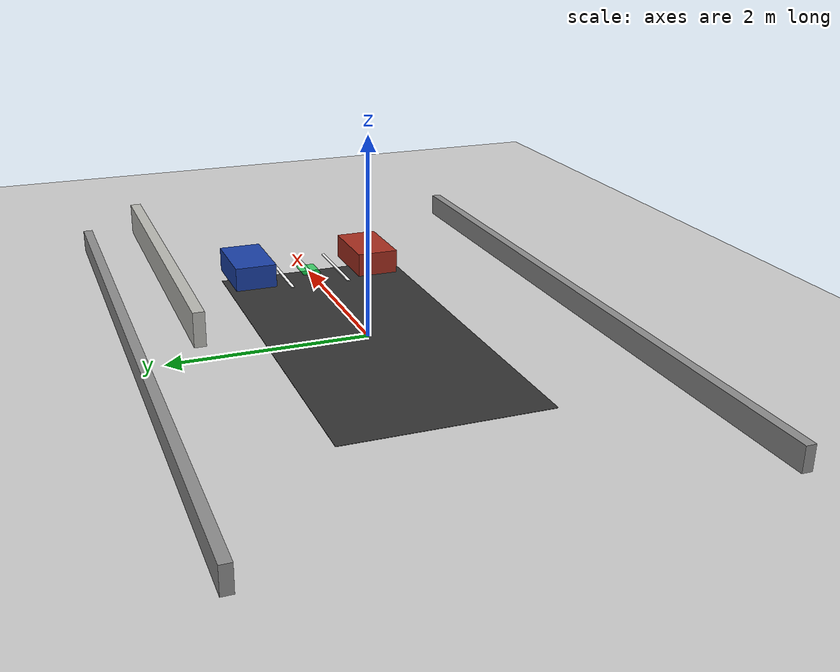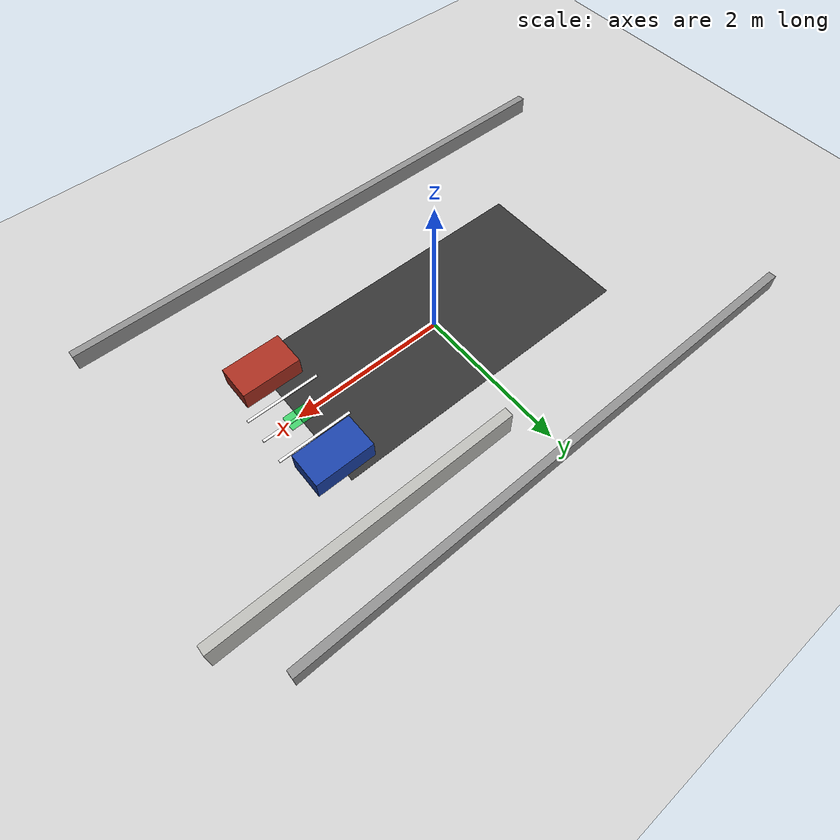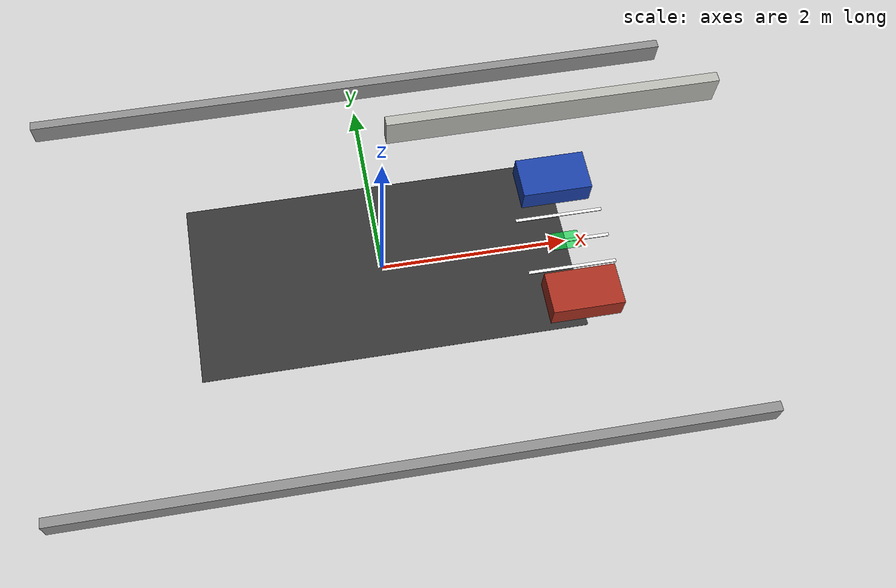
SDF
<?xml version="1.0"?>
<sdf version="1.6">
  <!-- 定义一个名为 tianbot_mini_parking_lot 的 Gazebo 世界。 -->
  <world name="tianbot_mini_parking_lot">
    <!-- 默认太阳光模型，用来给场景提供光照。 -->
    <include>
      <uri>model://sun</uri>
    </include>

    <!-- 默认无限大地面，给小车轮子提供真实接触地面。下面的深色地面只是视觉效果。 -->
    <include>
      <uri>model://ground_plane</uri>
    </include>

    <physics name="ode_physics" type="ode">
      <max_step_size>0.001</max_step_size>
      <real_time_factor>1.0</real_time_factor>
      <real_time_update_rate>1000</real_time_update_rate>
    </physics>

    <!-- 场景视觉设置：环境光、天空背景色和阴影。 -->
    <scene>
      <ambient>0.55 0.55 0.55 1</ambient>
      <background>0.75 0.82 0.90 1</background>
      <shadows>true</shadows>
    </scene>

    <!--
      深色停车场地面贴片。
      这里仅设置 visual 外观，不设置 collision。
      因为前面的 ground_plane 已经提供了真实地面碰撞。
    -->
    <model name="parking_floor">
      <static>true</static>
      <!-- 位于世界坐标原点，略微高于地面，避免和 ground_plane 视觉闪烁。 -->
      <pose>0 0 0.002 0 0 0</pose>
      <link name="link">
        <visual name="visual">
          <geometry>
            <box>
              <!-- 地面可视尺寸：长 4.0 米，宽 4.0 米，厚 0.004 米。 -->
              <size>4.0 2.0 0.004</size>
            </box>
          </geometry>
          <material>
            <ambient>0.18 0.18 0.18 1</ambient>
            <diffuse>0.20 0.20 0.20 1</diffuse>
          </material>
        </visual>
      </link>
    </model>

    <!--
      停车位后方墙体。
      这个物体同时有 collision 和 visual，所以既能看到，也会成为真实障碍物。
    -->
    <model name="back_wall">
      <static>true</static>
      <!-- x=2.2，y=1.6，z=0.18。增大 y 可以把后墙往更远处移动。 -->
      <pose>2.2 1.6 0.18 0 0 0</pose>
      <link name="link">
        <collision name="collision">
          <!-- 墙体尺寸：长 3.8 米，厚 0.12 米，高 0.36 米。 -->
          <geometry><box><size>3.8 0.12 0.36</size></box></geometry>
        </collision>
        <visual name="visual">
          <geometry><box><size>3.8 0.12 0.36</size></box></geometry>
          <material><ambient>0.72 0.72 0.70 1</ambient><diffuse>0.72 0.72 0.70 1</diffuse></material>
        </visual>
      </link>
    </model>

    <!-- 停车通道左侧长边界墙。 -->
    <model name="left_boundary">
      <static>true</static>
      <!-- 位于 y 正方向一侧。增大 y 可以加宽通道。 -->
      <pose>0.0 2.25 0.12 0 0 0</pose>
      <link name="link">
        <collision name="collision">
          <!-- 边界墙尺寸：长 7.2 米，厚 0.10 米，高 0.24 米。 -->
          <geometry><box><size>7.2 0.10 0.24</size></box></geometry>
        </collision>
        <visual name="visual">
          <geometry><box><size>7.2 0.10 0.24</size></box></geometry>
          <material><ambient>0.55 0.55 0.55 1</ambient><diffuse>0.55 0.55 0.55 1</diffuse></material>
        </visual>
      </link>
    </model>

    <!-- 停车通道右侧长边界墙。 -->
    <model name="right_boundary">
      <static>true</static>
      <!-- 位于 y 负方向一侧。减小 y 可以加宽通道。 -->
      <pose>0.0 -2.25 0.12 0 0 0</pose>
      <link name="link">
        <collision name="collision">
          <!-- 尺寸与左侧边界墙相同。 -->
          <geometry><box><size>7.2 0.10 0.24</size></box></geometry>
        </collision>
        <visual name="visual">
          <geometry><box><size>7.2 0.10 0.24</size></box></geometry>
          <material><ambient>0.55 0.55 0.55 1</ambient><diffuse>0.55 0.55 0.55 1</diffuse></material>
        </visual>
      </link>
    </model>

    <!--
      目标车位上方的蓝色已停车辆障碍物。
      把它的 y 坐标向外移动，可以让中间停车位更宽。
    -->
    <model name="parked_car_left">
      <static>true</static>
      <!-- x=2.0 让它与车位对齐，y=0.70 表示位于车位上方。 -->
      <pose>2.0 0.70 0.13 0 0 0</pose>
      <link name="link">
        <collision name="collision">
          <!-- 障碍车尺寸：长 0.75 米，宽 0.45 米，高 0.26 米。 -->
          <geometry><box><size>0.75 0.45 0.26</size></box></geometry>
        </collision>
        <visual name="visual">
          <geometry><box><size>0.75 0.45 0.26</size></box></geometry>
          <material><ambient>0.10 0.25 0.65 1</ambient><diffuse>0.10 0.25 0.65 1</diffuse></material>
        </visual>
      </link>
    </model>

    <!-- 目标车位下方的红色已停车辆障碍物。 -->
    <model name="parked_car_right">
      <static>true</static>
      <!-- x=2.0 与上方障碍车对齐，y=-0.70 表示位于车位下方。 -->
      <pose>2.0 -0.70 0.13 0 0 0</pose>
      <link name="link">
        <collision name="collision">
          <!-- 尺寸与上方障碍车相同。 -->
          <geometry><box><size>0.75 0.45 0.26</size></box></geometry>
        </collision>
        <visual name="visual">
          <geometry><box><size>0.75 0.45 0.26</size></box></geometry>
          <material><ambient>0.65 0.18 0.12 1</ambient><diffuse>0.65 0.18 0.12 1</diffuse></material>
        </visual>
      </link>
    </model>

    <!--
      中间白色停车引导线。
      只有 visual，没有 collision，小车和激光雷达不会把它当作障碍物。
    -->
    <model name="parking_space_line_center">
      <static>true</static>
      <!-- z=0.011 让线略高于地面，保证能看见。 -->
      <pose>2.0 0.0 0.011 0 0 0</pose>
      <link name="link">
        <visual name="visual">
          <!-- 用很薄的白色盒子模拟地面停车线。 -->
          <geometry><box><size>0.95 0.035 0.01</size></box></geometry>
          <material><ambient>1 1 1 1</ambient><diffuse>1 1 1 1</diffuse></material>
        </visual>
      </link>
    </model>

    <!-- 左侧白色停车线，只用于显示。 -->
    <model name="parking_space_line_left">
      <static>true</static>
      <!-- 位于中间目标车位的 y 正方向一侧。 -->
      <pose>2.0 0.32 0.011 0 0 0</pose>
      <link name="link">
        <visual name="visual">
          <geometry><box><size>0.95 0.035 0.01</size></box></geometry>
          <material><ambient>1 1 1 1</ambient><diffuse>1 1 1 1</diffuse></material>
        </visual>
      </link>
    </model>

    <!-- 右侧白色停车线，只用于显示。 -->
    <model name="parking_space_line_right">
      <static>true</static>
      <!-- 位于中间目标车位的 y 负方向一侧。 -->
      <pose>2.0 -0.32 0.011 0 0 0</pose>
      <link name="link">
        <visual name="visual">
          <geometry><box><size>0.95 0.035 0.01</size></box></geometry>
          <material><ambient>1 1 1 1</ambient><diffuse>1 1 1 1</diffuse></material>
        </visual>
      </link>
    </model>

    <!--
      绿色目标停车区域标记。
      这个标记只是视觉提示，本身不会自动成为规划目标。
      运行 demo 时，需要在 RViz 中把 2D Nav Goal 点到这个标记附近。
    -->
    <model name="parking_goal_marker">
      <static>true</static>
      <!-- 期望停车位姿的中心标记。 -->
      <pose>2.0 0.0 0.018 0 0 0</pose>
      <link name="link">
        <visual name="visual">
          <!-- 绿色目标区域，大致表示小车最终停车的目标范围。 -->
          <geometry><box><size>0.30 0.2 0.012</size></box></geometry>
          <material><ambient>0.0 0.85 0.25 0.65</ambient><diffuse>0.0 0.85 0.25 0.65</diffuse></material>
        </visual>
      </link>
    </model>
  </world>
</sdf>
